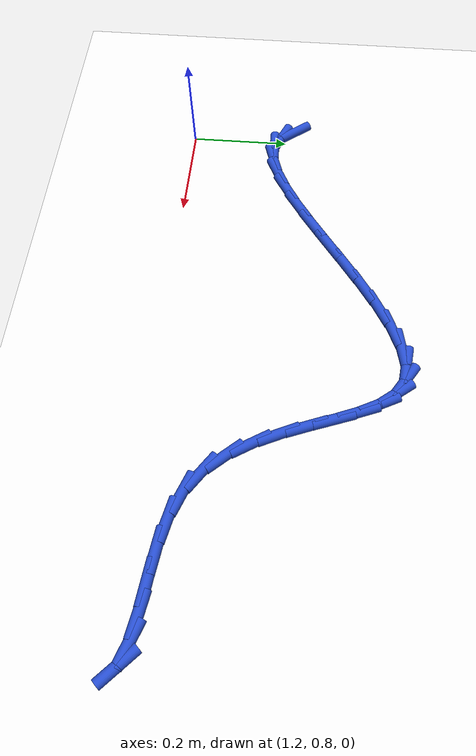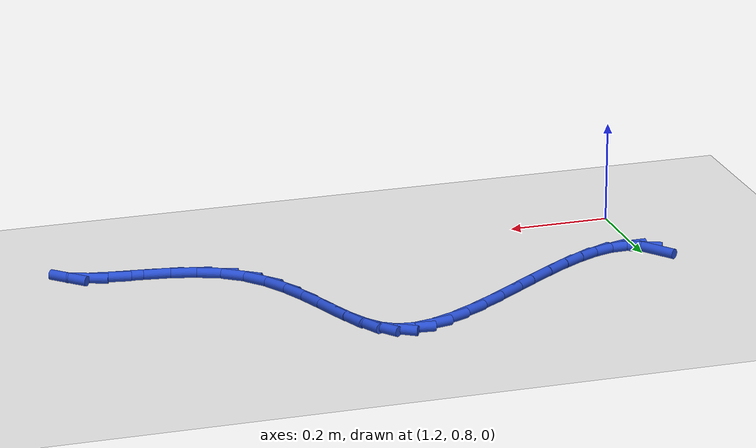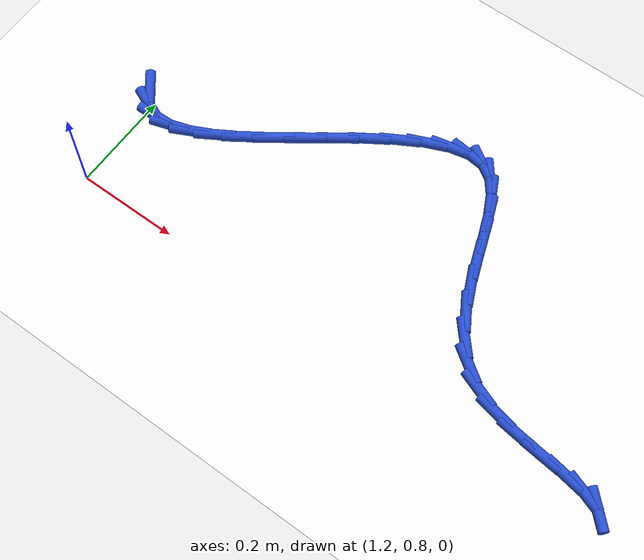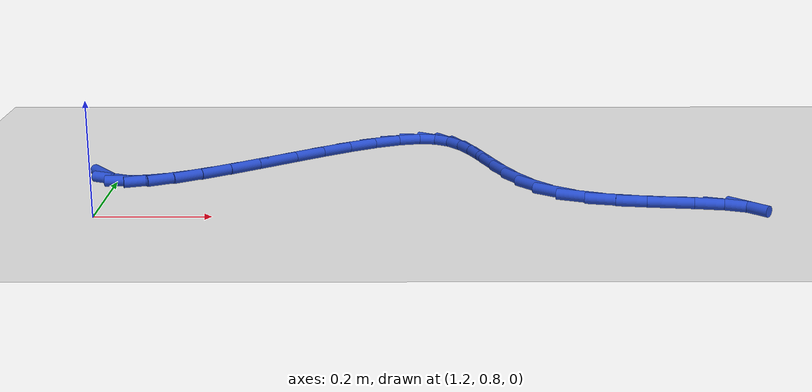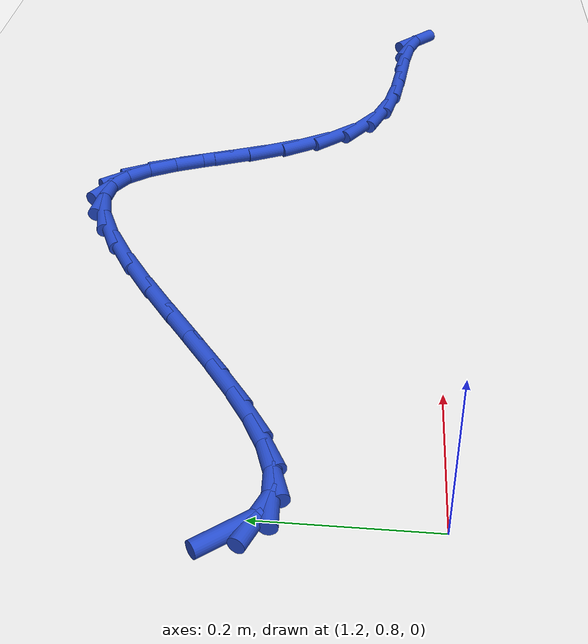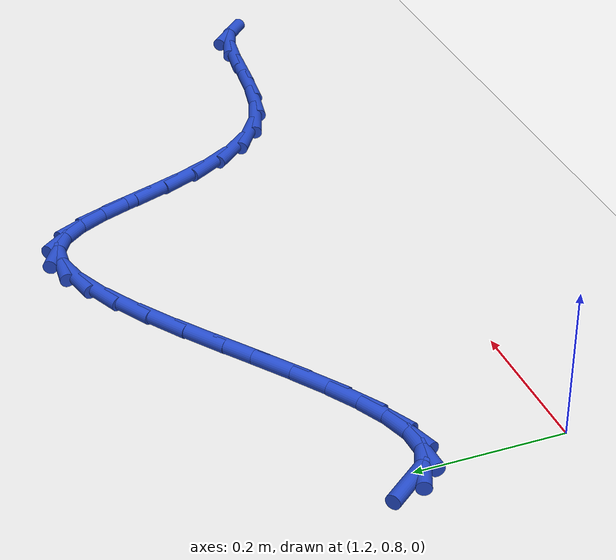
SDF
<sdf version="1.6">
 <world name="default">
  <model name="ground_plane">
   <static>1</static>
   <link name="link">
    <collision name="collision">
     <geometry><plane><normal>0 0 1</normal><size>100 100</size></plane></geometry>
     <surface><friction><ode><mu>100</mu><mu2>50</mu2></ode></friction></surface>
    </collision>
    <visual name="visual">
     <cast_shadows>0</cast_shadows>
     <geometry><plane><normal>0 0 1</normal><size>100 100</size></plane></geometry>
     <material>
      <script><uri>file://media/materials/scripts/gazebo.material</uri><name>Gazebo/WhiteGlow</name></script>
     </material>
    </visual>
   </link>
  </model>
  <model name="line">
   <link name="link_47">
    <pose>1.1750472876855285 1.016174439982104 0.01 0 1.57 -0.9089546877038118</pose>
    <collision name="collision">
     <geometry><cylinder><radius>0.01</radius><length>0.08</length></cylinder></geometry>
    </collision>
    <visual name="visual">
     <material>
      <script><name>Gazebo/Blue</name><uri>file://media/materials/scripts/gazebo.material</uri></script>
     </material>
     <geometry><cylinder><radius>0.01</radius><length>0.08</length></cylinder></geometry>
    </visual>
   </link>
   <link name="link_48">
    <pose>1.1959233011310941 0.9893780294693962 0.01 0 1.57 -0.40412909897627924</pose>
    <collision name="collision">
     <geometry><cylinder><radius>0.01</radius><length>0.08</length></cylinder></geometry>
    </collision>
    <visual name="visual">
     <material>
      <script><name>Gazebo/Blue</name><uri>file://media/materials/scripts/gazebo.material</uri></script>
     </material>
     <geometry><cylinder><radius>0.01</radius><length>0.08</length></cylinder></geometry>
    </visual>
   </link>
   <link name="link_49">
    <pose>1.2235433987558428 0.9775657713012891 0.01 0 1.57 0.036799329950371704</pose>
    <collision name="collision">
     <geometry><cylinder><radius>0.01</radius><length>0.08</length></cylinder></geometry>
    </collision>
    <visual name="visual">
     <material>
      <script><name>Gazebo/Blue</name><uri>file://media/materials/scripts/gazebo.material</uri></script>
     </material>
     <geometry><cylinder><radius>0.01</radius><length>0.08</length></cylinder></geometry>
    </visual>
   </link>
   <link name="link_50">
    <pose>1.2570487734947093 0.9787993035042969 0.01 0 1.57 0.3073554351599127</pose>
    <collision name="collision">
     <geometry><cylinder><radius>0.01</radius><length>0.08</length></cylinder></geometry>
    </collision>
    <visual name="visual">
     <material>
      <script><name>Gazebo/Blue</name><uri>file://media/materials/scripts/gazebo.material</uri></script>
     </material>
     <geometry><cylinder><radius>0.01</radius><length>0.08</length></cylinder></geometry>
    </visual>
   </link>
   <link name="link_51">
    <pose>1.2955202474756615 0.9910106896194093 0.01 0 1.57 0.46104971388925536</pose>
    <collision name="collision">
     <geometry><cylinder><radius>0.01</radius><length>0.08</length></cylinder></geometry>
    </collision>
    <visual name="visual">
     <material>
      <script><name>Gazebo/Blue</name><uri>file://media/materials/scripts/gazebo.material</uri></script>
     </material>
     <geometry><cylinder><radius>0.01</radius><length>0.08</length></cylinder></geometry>
    </visual>
   </link>
   <link name="link_52">
    <pose>1.3380386428266666 1.0121319931876152 0.01 0 1.57 0.5496400553464482</pose>
    <collision name="collision">
     <geometry><cylinder><radius>0.01</radius><length>0.08</length></cylinder></geometry>
    </collision>
    <visual name="visual">
     <material>
      <script><name>Gazebo/Blue</name><uri>file://media/materials/scripts/gazebo.material</uri></script>
     </material>
     <geometry><cylinder><radius>0.01</radius><length>0.08</length></cylinder></geometry>
    </visual>
   </link>
   <link name="link_53">
    <pose>1.3836847816756912 1.0400952777499033 0.01 0 1.57 0.5999738697980465</pose>
    <collision name="collision">
     <geometry><cylinder><radius>0.01</radius><length>0.08</length></cylinder></geometry>
    </collision>
    <visual name="visual">
     <material>
      <script><name>Gazebo/Blue</name><uri>file://media/materials/scripts/gazebo.material</uri></script>
     </material>
     <geometry><cylinder><radius>0.01</radius><length>0.08</length></cylinder></geometry>
    </visual>
   </link>
   <link name="link_54">
    <pose>1.4315394861507045 1.0728326068472644 0.01 0 1.57 0.6248225180725825</pose>
    <collision name="collision">
     <geometry><cylinder><radius>0.01</radius><length>0.08</length></cylinder></geometry>
    </collision>
    <visual name="visual">
     <material>
      <script><name>Gazebo/Blue</name><uri>file://media/materials/scripts/gazebo.material</uri></script>
     </material>
     <geometry><cylinder><radius>0.01</radius><length>0.08</length></cylinder></geometry>
    </visual>
   </link>
   <link name="link_55">
    <pose>1.4806835783796732 1.1082760440206874 0.01 0 1.57 0.6297362480089207</pose>
    <collision name="collision">
     <geometry><cylinder><radius>0.01</radius><length>0.08</length></cylinder></geometry>
    </collision>
    <visual name="visual">
     <material>
      <script><name>Gazebo/Blue</name><uri>file://media/materials/scripts/gazebo.material</uri></script>
     </material>
     <geometry><cylinder><radius>0.01</radius><length>0.08</length></cylinder></geometry>
    </visual>
   </link>
   <link name="link_56">
    <pose>1.530197880490564 1.1443576528111603 0.01 0 1.57 0.6158625173784111</pose>
    <collision name="collision">
     <geometry><cylinder><radius>0.01</radius><length>0.08</length></cylinder></geometry>
    </collision>
    <visual name="visual">
     <material>
      <script><name>Gazebo/Blue</name><uri>file://media/materials/scripts/gazebo.material</uri></script>
     </material>
     <geometry><cylinder><radius>0.01</radius><length>0.08</length></cylinder></geometry>
    </visual>
   </link>
   <link name="link_57">
    <pose>1.5791632146113457 1.179009496759674 0.01 0 1.57 0.5805225199326179</pose>
    <collision name="collision">
     <geometry><cylinder><radius>0.01</radius><length>0.08</length></cylinder></geometry>
    </collision>
    <visual name="visual">
     <material>
      <script><name>Gazebo/Blue</name><uri>file://media/materials/scripts/gazebo.material</uri></script>
     </material>
     <geometry><cylinder><radius>0.01</radius><length>0.08</length></cylinder></geometry>
    </visual>
   </link>
   <link name="link_58">
    <pose>1.6266604028699856 1.210163639407217 0.01 0 1.57 0.5159893415369324</pose>
    <collision name="collision">
     <geometry><cylinder><radius>0.01</radius><length>0.08</length></cylinder></geometry>
    </collision>
    <visual name="visual">
     <material>
      <script><name>Gazebo/Blue</name><uri>file://media/materials/scripts/gazebo.material</uri></script>
     </material>
     <geometry><cylinder><radius>0.01</radius><length>0.08</length></cylinder></geometry>
    </visual>
   </link>
   <link name="link_59">
    <pose>1.6717702673944506 1.235752144294779 0.01 0 1.57 0.4056838068010564</pose>
    <collision name="collision">
     <geometry><cylinder><radius>0.01</radius><length>0.08</length></cylinder></geometry>
    </collision>
    <visual name="visual">
     <material>
      <script><name>Gazebo/Blue</name><uri>file://media/materials/scripts/gazebo.material</uri></script>
     </material>
     <geometry><cylinder><radius>0.01</radius><length>0.08</length></cylinder></geometry>
    </visual>
   </link>
   <link name="link_60">
    <pose>1.7135736303127085 1.2537070749633488 0.01 0 1.57 0.21620328356511367</pose>
    <collision name="collision">
     <geometry><cylinder><radius>0.01</radius><length>0.08</length></cylinder></geometry>
    </collision>
    <visual name="visual">
     <material>
      <script><name>Gazebo/Blue</name><uri>file://media/materials/scripts/gazebo.material</uri></script>
     </material>
     <geometry><cylinder><radius>0.01</radius><length>0.08</length></cylinder></geometry>
    </visual>
   </link>
   <link name="link_61">
    <pose>1.7511513137527273 1.2619604949539165 0.01 0 1.57 -0.10798779225799847</pose>
    <collision name="collision">
     <geometry><cylinder><radius>0.01</radius><length>0.08</length></cylinder></geometry>
    </collision>
    <visual name="visual">
     <material>
      <script><name>Gazebo/Blue</name><uri>file://media/materials/scripts/gazebo.material</uri></script>
     </material>
     <geometry><cylinder><radius>0.01</radius><length>0.08</length></cylinder></geometry>
    </visual>
   </link>
   <link name="link_62">
    <pose>1.7835841398424739 1.2584444678074707 0.01 0 1.57 -0.557595516058612</pose>
    <collision name="collision">
     <geometry><cylinder><radius>0.01</radius><length>0.08</length></cylinder></geometry>
    </collision>
    <visual name="visual">
     <material>
      <script><name>Gazebo/Blue</name><uri>file://media/materials/scripts/gazebo.material</uri></script>
     </material>
     <geometry><cylinder><radius>0.01</radius><length>0.08</length></cylinder></geometry>
    </visual>
   </link>
   <link name="link_63">
    <pose>1.8103151618089077 1.2417748697533397 0.01 0 1.57 -0.9047620182827019</pose>
    <collision name="collision">
     <geometry><cylinder><radius>0.01</radius><length>0.08</length></cylinder></geometry>
    </collision>
    <visual name="visual">
     <material>
      <script><name>Gazebo/Blue</name><uri>file://media/materials/scripts/gazebo.material</uri></script>
     </material>
     <geometry><cylinder><radius>0.01</radius><length>0.08</length></cylinder></geometry>
    </visual>
   </link>
   <link name="link_64">
    <pose>1.8324186401709102 1.213646937811873 0.01 0 1.57 -1.0964707608126696</pose>
    <collision name="collision">
     <geometry><cylinder><radius>0.01</radius><length>0.08</length></cylinder></geometry>
    </collision>
    <visual name="visual">
     <material>
      <script><name>Gazebo/Blue</name><uri>file://media/materials/scripts/gazebo.material</uri></script>
     </material>
     <geometry><cylinder><radius>0.01</radius><length>0.08</length></cylinder></geometry>
    </visual>
   </link>
   <link name="link_65">
    <pose>1.8514277989776242 1.176622331258031 0.01 0 1.57 -1.188218814374237</pose>
    <collision name="collision">
     <geometry><cylinder><radius>0.01</radius><length>0.08</length></cylinder></geometry>
    </collision>
    <visual name="visual">
     <material>
      <script><name>Gazebo/Blue</name><uri>file://media/materials/scripts/gazebo.material</uri></script>
     </material>
     <geometry><cylinder><radius>0.01</radius><length>0.08</length></cylinder></geometry>
    </visual>
   </link>
   <link name="link_66">
    <pose>1.8688758873999156 1.1332627567910643 0.01 0 1.57 -1.2167688260986915</pose>
    <collision name="collision">
     <geometry><cylinder><radius>0.01</radius><length>0.08</length></cylinder></geometry>
    </collision>
    <visual name="visual">
     <material>
      <script><name>Gazebo/Blue</name><uri>file://media/materials/scripts/gazebo.material</uri></script>
     </material>
     <geometry><cylinder><radius>0.01</radius><length>0.08</length></cylinder></geometry>
    </visual>
   </link>
   <link name="link_67">
    <pose>1.8862961546086505 1.0861299211102216 0.01 0 1.57 -1.1976592762950615</pose>
    <collision name="collision">
     <geometry><cylinder><radius>0.01</radius><length>0.08</length></cylinder></geometry>
    </collision>
    <visual name="visual">
     <material>
      <script><name>Gazebo/Blue</name><uri>file://media/materials/scripts/gazebo.material</uri></script>
     </material>
     <geometry><cylinder><radius>0.01</radius><length>0.08</length></cylinder></geometry>
    </visual>
   </link>
   <link name="link_68">
    <pose>1.9052218497746969 1.0377855309147541 0.01 0 1.57 -1.1335799747302893</pose>
    <collision name="collision">
     <geometry><cylinder><radius>0.01</radius><length>0.08</length></cylinder></geometry>
    </collision>
    <visual name="visual">
     <material>
      <script><name>Gazebo/Blue</name><uri>file://media/materials/scripts/gazebo.material</uri></script>
     </material>
     <geometry><cylinder><radius>0.01</radius><length>0.08</length></cylinder></geometry>
    </visual>
   </link>
   <link name="link_69">
    <pose>1.9271862220689193 0.9907912929039119 0.01 0 1.57 -1.0187362894396148</pose>
    <collision name="collision">
     <geometry><cylinder><radius>0.01</radius><length>0.08</length></cylinder></geometry>
    </collision>
    <visual name="visual">
     <material>
      <script><name>Gazebo/Blue</name><uri>file://media/materials/scripts/gazebo.material</uri></script>
     </material>
     <geometry><cylinder><radius>0.01</radius><length>0.08</length></cylinder></geometry>
    </visual>
   </link>
   <link name="link_70">
    <pose>1.9537225206621838 0.9477089137769452 0.01 0 1.57 -0.8426254718458752</pose>
    <collision name="collision">
     <geometry><cylinder><radius>0.01</radius><length>0.08</length></cylinder></geometry>
    </collision>
    <visual name="visual">
     <material>
      <script><name>Gazebo/Blue</name><uri>file://media/materials/scripts/gazebo.material</uri></script>
     </material>
     <geometry><cylinder><radius>0.01</radius><length>0.08</length></cylinder></geometry>
    </visual>
   </link>
   <link name="link_71">
    <pose>1.9863639947253582 0.9111001002331038 0.01 0 1.57 -0.6008930600144414</pose>
    <collision name="collision">
     <geometry><cylinder><radius>0.01</radius><length>0.08</length></cylinder></geometry>
    </collision>
    <visual name="visual">
     <material>
      <script><name>Gazebo/Blue</name><uri>file://media/materials/scripts/gazebo.material</uri></script>
     </material>
     <geometry><cylinder><radius>0.01</radius><length>0.08</length></cylinder></geometry>
    </visual>
   </link>
   <link name="link_72">
    <pose>2.0266234555063716 0.8835043067539454 0.01 0 1.57 -0.3595271560284184</pose>
    <collision name="collision">
     <geometry><cylinder><radius>0.01</radius><length>0.08</length></cylinder></geometry>
    </collision>
    <visual name="visual">
     <material>
      <script><name>Gazebo/Blue</name><uri>file://media/materials/scripts/gazebo.material</uri></script>
     </material>
     <geometry><cylinder><radius>0.01</radius><length>0.08</length></cylinder></geometry>
    </visual>
   </link>
   <link name="link_73">
    <pose>2.0742926991614454 0.8655871965070105 0.01 0 1.57 -0.20598213762318981</pose>
    <collision name="collision">
     <geometry><cylinder><radius>0.01</radius><length>0.08</length></cylinder></geometry>
    </collision>
    <visual name="visual">
     <material>
      <script><name>Gazebo/Blue</name><uri>file://media/materials/scripts/gazebo.material</uri></script>
     </material>
     <geometry><cylinder><radius>0.01</radius><length>0.08</length></cylinder></geometry>
    </visual>
   </link>
   <link name="link_74">
    <pose>2.126164211874888 0.8547488709570461 0.01 0 1.57 -0.12653876003628145</pose>
    <collision name="collision">
     <geometry><cylinder><radius>0.01</radius><length>0.08</length></cylinder></geometry>
    </collision>
    <visual name="visual">
     <material>
      <script><name>Gazebo/Blue</name><uri>file://media/materials/scripts/gazebo.material</uri></script>
     </material>
     <geometry><cylinder><radius>0.01</radius><length>0.08</length></cylinder></geometry>
    </visual>
   </link>
   <link name="link_75">
    <pose>2.17872938536466 0.848061608647052 0.01 0 1.57 -0.10938864065094271</pose>
    <collision name="collision">
     <geometry><cylinder><radius>0.01</radius><length>0.08</length></cylinder></geometry>
    </collision>
    <visual name="visual">
     <material>
      <script><name>Gazebo/Blue</name><uri>file://media/materials/scripts/gazebo.material</uri></script>
     </material>
     <geometry><cylinder><radius>0.01</radius><length>0.08</length></cylinder></geometry>
    </visual>
   </link>
   <link name="link_76">
    <pose>2.228479611348723 0.8425976881200272 0.01 0 1.57 -0.16359161893482888</pose>
    <collision name="collision">
     <geometry><cylinder><radius>0.01</radius><length>0.08</length></cylinder></geometry>
    </collision>
    <visual name="visual">
     <material>
      <script><name>Gazebo/Blue</name><uri>file://media/materials/scripts/gazebo.material</uri></script>
     </material>
     <geometry><cylinder><radius>0.01</radius><length>0.08</length></cylinder></geometry>
    </visual>
   </link>
   <link name="link_77">
    <pose>2.2719062815450393 0.8354293879189704 0.01 0 1.57 -0.3377967429531294</pose>
    <collision name="collision">
     <geometry><cylinder><radius>0.01</radius><length>0.08</length></cylinder></geometry>
    </collision>
    <visual name="visual">
     <material>
      <script><name>Gazebo/Blue</name><uri>file://media/materials/scripts/gazebo.material</uri></script>
     </material>
     <geometry><cylinder><radius>0.01</radius><length>0.08</length></cylinder></geometry>
    </visual>
   </link>
   <link name="link_78">
    <pose>2.3055007876715687 0.8236289865868804 0.01 0 1.57 -0.7627459349633288</pose>
    <collision name="collision">
     <geometry><cylinder><radius>0.01</radius><length>0.08</length></cylinder></geometry>
    </collision>
    <visual name="visual">
     <material>
      <script><name>Gazebo/Blue</name><uri>file://media/materials/scripts/gazebo.material</uri></script>
     </material>
     <geometry><cylinder><radius>0.01</radius><length>0.08</length></cylinder></geometry>
    </visual>
   </link>
  </model>
 </world>
</sdf>
